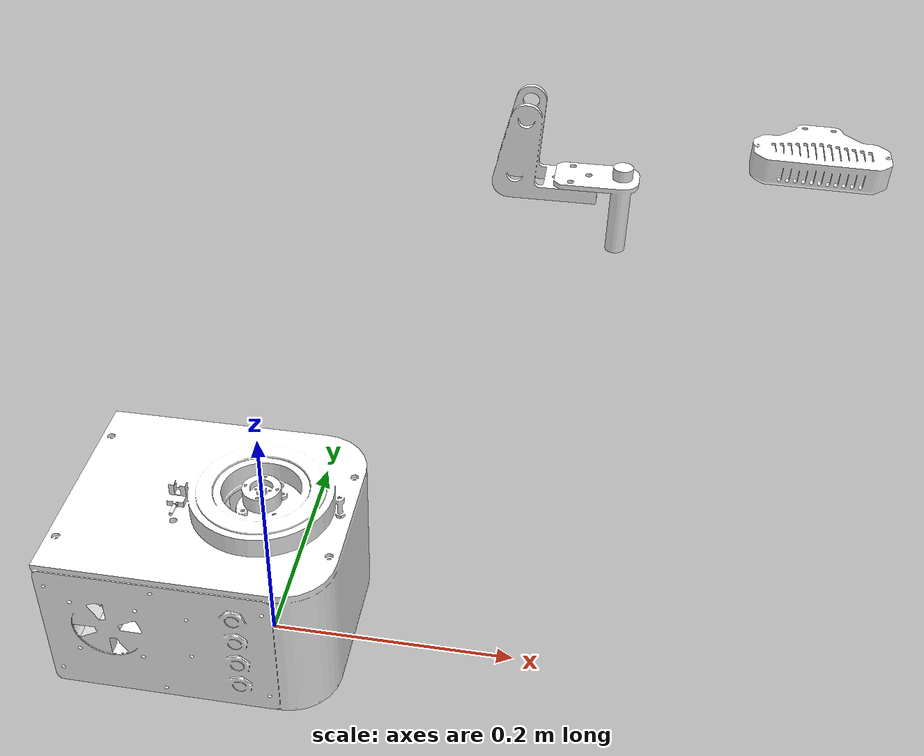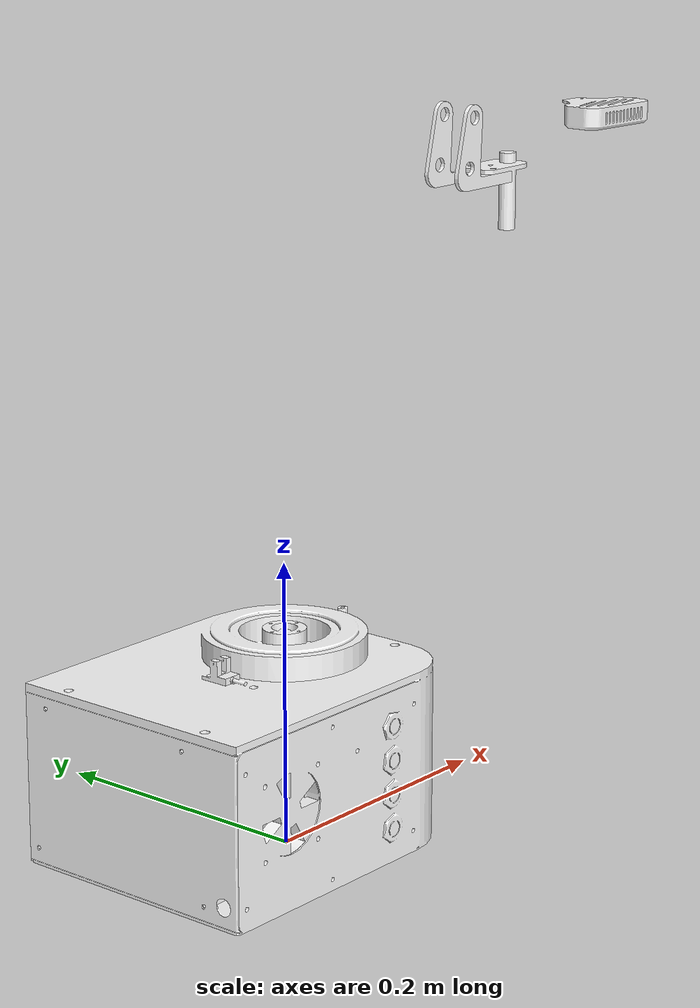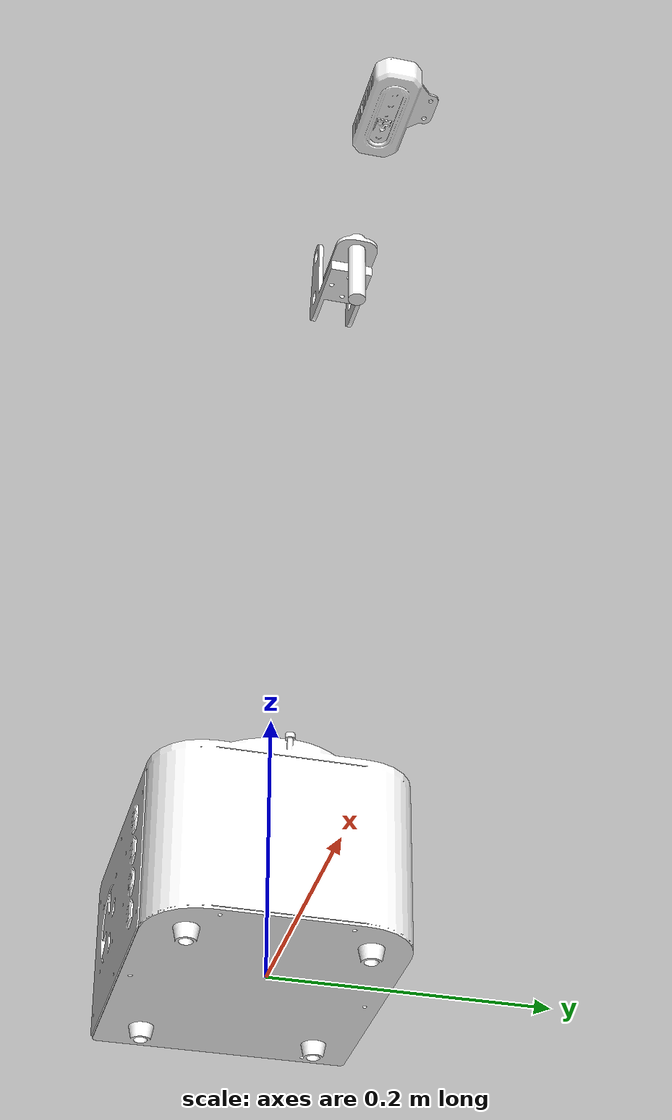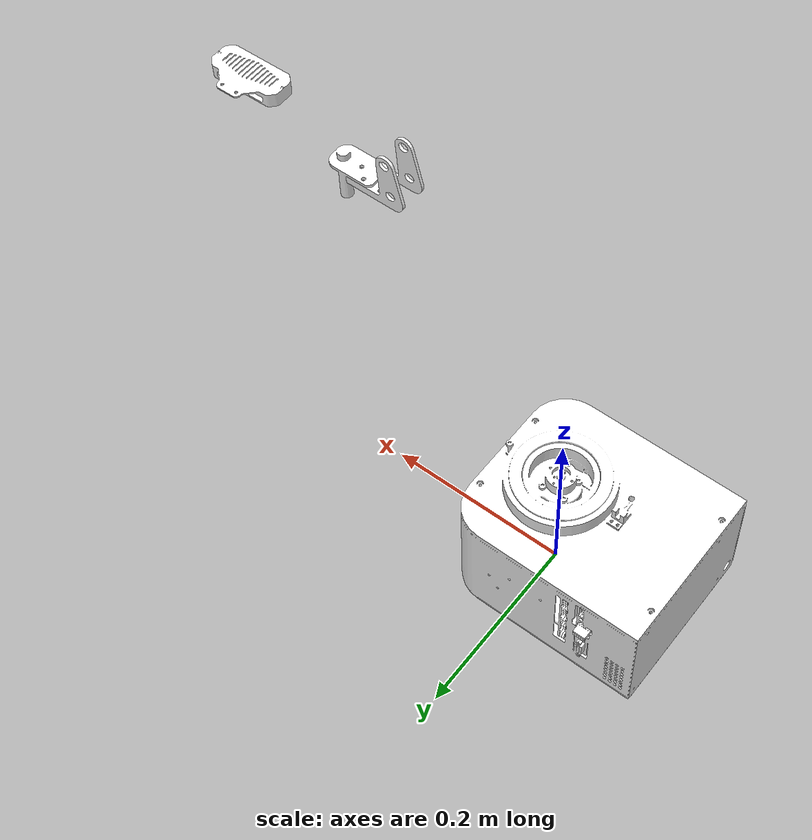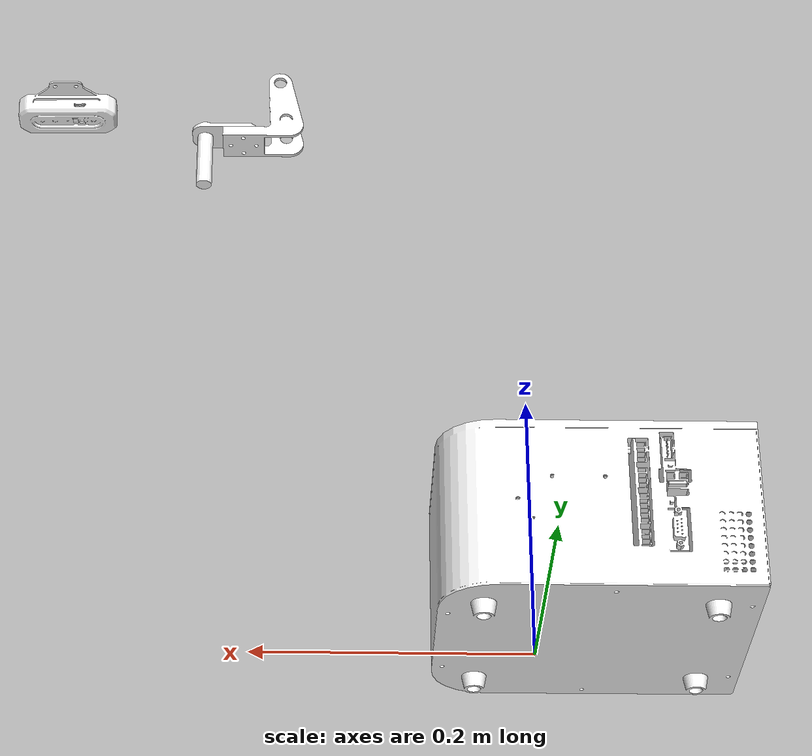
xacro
<?xml version="1.0" encoding="utf-8"?>
<robot xmlns:xacro="http://www.ros.org/wiki/xacro" name="machinery">

    <!-- 参数 -->
    <xacro:arg name="origin_position" default="[180.0, 0.0, 444.2]"/>
    <xacro:arg name="custom_origin_position" default="[180.0, 0.0, 444.2]"/>
    <xacro:arg name="frame_prefix" default=""/>
    <xacro:arg name="serial_port_name" default="/dev/ttyUSB0" />
    <xacro:arg name="baud_rate" default="115200" />

    <!-- urdf和xacro文件 -->
    <!-- 1. 包含定义了宏的文件 -->
    <xacro:include filename="$(find machinery_model)/urdf/machinery_model.urdf.xacro" />
    <xacro:include filename="machinery_control.urdf.xacro" />

    <!-- 2. 调用宏并传入 frame_prefix 参数 -->
    <xacro:machinery_model frame_prefix="$(arg frame_prefix)"/>
    <xacro:machinery_control origin_position="$(arg origin_position)" custom_origin_position="$(arg custom_origin_position)" frame_prefix="$(arg frame_prefix)" serial_port_name="$(arg serial_port_name)" />
</robot>

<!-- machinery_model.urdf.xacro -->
<robot xmlns:xacro="http://www.ros.org/wiki/xacro">
  <xacro:macro name="machinery_model" params="frame_prefix">
    <link
      name="${frame_prefix}base_link">
      <inertial>
        <origin
          xyz="-0.0486188894280932 0.00176816930171109 0.0909824538687765"
          rpy="0 0 0" />
        <mass
          value="1.02125128151506" />
        <inertia
          ixx="0.00193691559351903"
          ixy="-9.52989056741818E-06"
          ixz="1.91831821333131E-05"
          iyy="0.00229958159384588"
          iyz="1.51366153024328E-05"
          izz="0.00324574895892859" />
      </inertial>
      <visual>
        <origin
          xyz="0 0 0"
          rpy="0 0 0" />
        <geometry>
          <mesh
            filename="package://machinery_model/meshes/base_link.STL" />
        </geometry>
        <material
          name="">
          <color
            rgba="1 1 1 1" />
        </material>
      </visual>
      <collision>
        <origin
          xyz="0 0 0"
          rpy="0 0 0" />
        <geometry>
          <mesh
            filename="package://machinery_model/meshes/base_link.STL" />
        </geometry>
      </collision>
    </link>
    <link
      name="${frame_prefix}link5">
      <inertial>
        <origin
          xyz="-0.0448846757880798 -0.00101107764704261 3.18733754667289E-15"
          rpy="0 0 0" />
        <mass
          value="0.0138533273546515" />
        <inertia
          ixx="4.9946239003803E-06"
          ixy="2.17992385955861E-06"
          ixz="-2.70827310010771E-21"
          iyy="5.88510779675631E-06"
          iyz="-1.20236153926518E-21"
          izz="7.59120021026983E-06" />
      </inertial>
      <visual>
        <origin
          xyz="0 0 0"
          rpy="0 0 0" />
        <geometry>
          <mesh
            filename="package://machinery_model/meshes/link5.STL" />
        </geometry>
        <material
          name="">
          <color
            rgba="1 1 1 1" />
        </material>
      </visual>
      <collision>
        <origin
          xyz="0 0 0"
          rpy="0 0 0" />
        <geometry>
          <mesh
            filename="package://machinery_model/meshes/link5.STL" />
        </geometry>
      </collision>
    </link>
    <joint
      name="${frame_prefix}joint5"
      type="continuous">
      <origin
        xyz="0.243 -0.0001 0.4442"
        rpy="1.5708 0 0" />
      <parent
        link="${frame_prefix}base_link" />
      <child
        link="${frame_prefix}link5" />
      <axis
        xyz="0 0 1" />
    </joint>
    <link
      name="${frame_prefix}gripper_link">
      <inertial>
        <origin
          xyz="-0.00615018465544423 2.99813071504701E-15 -0.0345975477100909"
          rpy="0 0 0" />
        <mass
          value="0.00992961053313759" />
        <inertia
          ixx="2.73081671738563E-06"
          ixy="1.30568763883768E-21"
          ixz="-7.26870124932978E-07"
          iyy="3.80040584061147E-06"
          iyz="6.49275885276687E-21"
          izz="1.7118921001945E-06" />
      </inertial>
      <visual>
        <origin
          xyz="0 0 0"
          rpy="0 0 0" />
        <geometry>
          <mesh
            filename="package://machinery_model/meshes/gripper_link.STL" />
        </geometry>
        <material
          name="">
          <color
            rgba="1 1 1 1" />
        </material>
      </visual>
      <collision>
        <origin
          xyz="0 0 0"
          rpy="0 0 0" />
        <geometry>
          <mesh
            filename="package://machinery_model/meshes/gripper_link.STL" />
        </geometry>
      </collision>
    </link>
    <joint
      name="${frame_prefix}gripper_joint"
      type="fixed">
      <origin
        xyz="0 -0.052359 0"
        rpy="1.5708 0 0" />
      <parent
        link="${frame_prefix}link5" />
      <child
        link="${frame_prefix}gripper_link" />
      <axis
        xyz="0 0 0" />
    </joint>
    <link
      name="${frame_prefix}camera_link">
      <inertial>
        <origin
          xyz="-0.00588834319762738 -0.0199338840390145 -0.00042327942039525"
          rpy="0 0 0" />
        <mass
          value="0.0277391536496647" />
        <inertia
          ixx="1.4568481744067E-05"
          ixy="-9.0101466997833E-09"
          ixz="1.94752696768922E-08"
          iyy="2.44550037891407E-06"
          iyz="6.73982517197995E-09"
          izz="1.27747521800792E-05" />
      </inertial>
      <visual>
        <origin
          xyz="0 0 0"
          rpy="0 0 0" />
        <geometry>
          <mesh
            filename="package://machinery_model/meshes/camera_link.STL" />
        </geometry>
        <material
          name="">
          <color
            rgba="1 1 1 1" />
        </material>
      </visual>
      <collision>
        <origin
          xyz="0 0 0"
          rpy="0 0 0" />
        <geometry>
          <mesh
            filename="package://machinery_model/meshes/camera_link.STL" />
        </geometry>
      </collision>
    </link>
    <joint
      name="${frame_prefix}camera_joint"
      type="fixed">
      <origin
        xyz="0.37194 -0.0084171 0.45691"
        rpy="-1.5708 1.5521 -3.1416" />
      <parent
        link="${frame_prefix}base_link" />
      <child
        link="${frame_prefix}camera_link" />
      <axis
        xyz="0 0 0" />
    </joint>
  </xacro:macro>
</robot>
